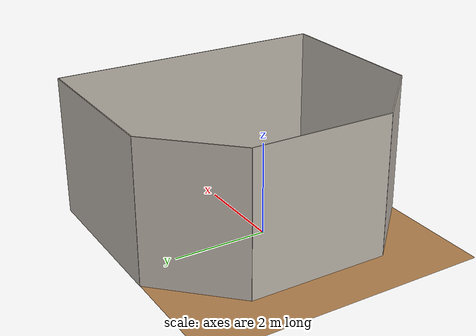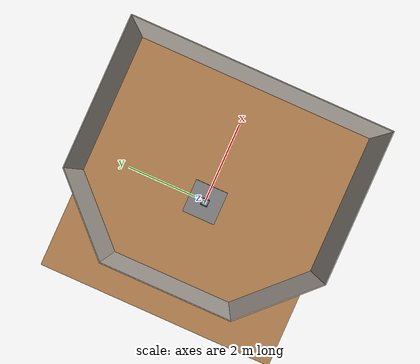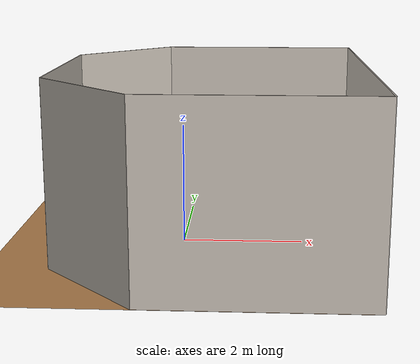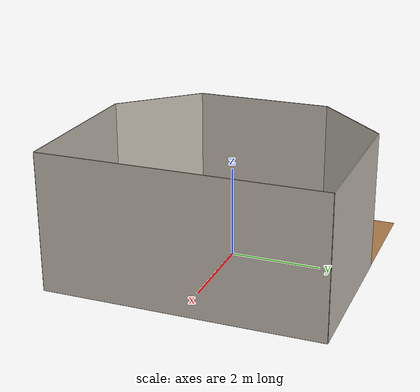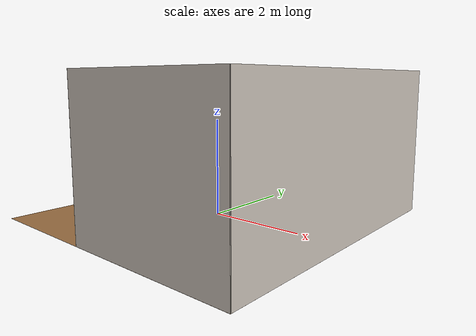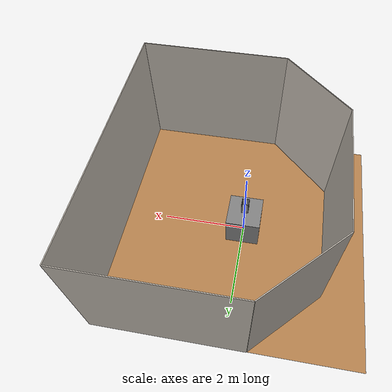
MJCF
<mujoco model="table_arena">
  <asset>
    <texture builtin="gradient" height="256" rgb1=".9 .9 1." rgb2=".2 .3 .4" type="skybox" width="256"/>
    <texture file="../textures/wood-tiles.png" type="2d" name="texplane"/>
    <material name="floorplane" reflectance="0.01" shininess="0.0" specular="0.0" texrepeat="2 2" texture="texplane" texuniform="true"/>
    <!-- ceramic table texture and material-->
    <texture file="../textures/ceramic.png" type="cube" name="tex-ceramic"/>
    <material name="table_ceramic" reflectance="0.0" shininess="0.0" specular="0.2" texrepeat="1 1" texture="tex-ceramic" />
    <!-- steel legs -->
    <texture file="../textures/steel-brushed.png" type="cube" name="tex-steel-brushed"/>
    <material name="table_legs_metal" reflectance="0.8" shininess="0.8" texrepeat="1 1" texture="tex-steel-brushed" />
    <!-- plaster walls -->
    <texture file="../textures/cream-plaster.png" type="2d" name="tex-cream-plaster"/>
    <material name="walls_mat" reflectance="0.0" shininess="0.1" specular="0.1" texrepeat="3 3" texture="tex-cream-plaster" texuniform="true" />
    <!-- added table texture and material for domain randomization -->
    <texture  name="textable" builtin="flat" height="512" width="512" rgb1="0.5 0.5 0.5" rgb2="0.5 0.5 0.5"/>
    <material name="table_mat" texture="textable" />

    <mesh file="meshes/trash_can.stl" name="trashcan_mesh" scale="0.01 0.01 0.02"/>
  </asset>
  <worldbody>
    <!-- Floor -->
    <geom condim="3" material="floorplane" name="floor" pos="0 0 0" size="3 3 .125" type="plane"/>
    <!-- Walls (visual only) -->
    <geom pos="-1.25 2.25 1.5" quat="0.6532815 0.6532815 0.2705981 0.2705981" size="1.06 1.5 0.01" type="box" conaffinity="0" contype="0" group="1" name="wall_leftcorner_visual" material="walls_mat"/>
    <geom pos="-1.25 -2.25 1.5" quat="0.6532815 0.6532815 -0.2705981 -0.2705981" size="1.06 1.5 0.01" type="box" conaffinity="0" contype="0" group="1" name="wall_rightcorner_visual" material="walls_mat"/>
    <geom pos="1.25 3 1.5" quat="0.7071 0.7071 0 0" size="1.75 1.5 0.01" type="box" conaffinity="0" contype="0" group="1" name="wall_left_visual" material="walls_mat"/>
    <geom pos="1.25 -3 1.5" quat="0.7071 -0.7071 0 0" size="1.75 1.5 0.01" type="box" conaffinity="0" contype="0" group="1" name="wall_right_visual" material="walls_mat"/>
    <geom pos="-2 0 1.5" quat="0.5 0.5 0.5 0.5" size="1.5 1.5 0.01" type="box" conaffinity="0" contype="0" group="1" name="wall_rear_visual" material="walls_mat"/>
    <geom pos="3 0 1.5" quat="0.5 0.5 -0.5 -0.5" size="3 1.5 0.01" type="box" conaffinity="0" contype="0" group="1" name="wall_front_visual" material="walls_mat"/>
    <!-- Table body -->
    <body name="table" pos="0 0 0.4">
      <geom pos="0 0 0" size="0.4 0.4 0.4" type="box" group="0" name="table_collision" friction="1 0.005 0.0001"/>
      <geom pos="0 0 0" size="0.4 0.4 0.4" type="box" conaffinity="0" contype="0" group="1" name="table_visual" material="table_ceramic"/>
      <site pos="0 0 0.4" name="table_top" size="0.001 0.001 0.001" rgba="0 0 0 0"/>
      <!-- Legs (visual only) -->
      <geom pos="0 0 0" size="0.05 0.1" type="cylinder" conaffinity="0" contype="0" group="1" name="table_leg1_visual" material="table_legs_metal"/>
      <geom pos="0 0 0" size="0.05 0.1" type="cylinder" conaffinity="0" contype="0" group="1" name="table_leg2_visual" material="table_legs_metal"/>
      <geom pos="0 0 0" size="0.05 0.1" type="cylinder" conaffinity="0" contype="0" group="1" name="table_leg3_visual" material="table_legs_metal"/>
      <geom pos="0 0 0" size="0.05 0.1" type="cylinder" conaffinity="0" contype="0" group="1" name="table_leg4_visual" material="table_legs_metal"/>
    </body>
    <body name="trashcan" pos="0 0 0.85" quat="1 0 0 0">
      <geom pos="0 0.08 0.175" size="0.08 0.005 0.17" type="box" group="0" conaffinity="1" name="trashcan1_collision" friction="1 0.005 0.0001"/>
      <geom pos="0 0.08 0.175" size="0.08 0.005 0.17" type="box" group="1" conaffinity="0" contype="0" name="trashcan1_visual" rgba="0.1 0.1 0.5 0.5"/>

      <geom pos="-0.08 0 0.175" size="0.005 0.08 0.17" type="box" group="0" conaffinity="1" name="trashcan2_collsion" friction="1 0.005 0.0001"/>
      <geom pos = "-0.08 0 0.175" size="0.005 0.08 0.17" type="box" group="1" conaffinity="0" contype="0" name="trashcan2_visual" rgba="0.1 0.1 0.5 0.5"/>

      <geom pos="0.08 0 0.175" size="0.005 0.08 0.17" type="box" group="0" conaffinity="1" name="trashcan3_collsion" friction="1 0.005 0.0001"/>
      <geom pos = "0.08 0 0.175" size="0.005 0.08 0.17" type="box" group="1" conaffinity="0" contype="0" name="trashcan3_visual" rgba="0.1 0.1 0.5 0.5"/>

      <geom pos="0 -0.08 0.175" size="0.08 0.005 0.17" type="box" group="0" conaffinity="1" name="trashcan4_collision" friction="1 0.005 0.0001"/>
      <geom pos="0 -0.08 0.175" size="0.08 0.005 0.17" type="box" group="1" conaffinity="0" contype="0" name="trashcan4_visual" rgba="0.1 0.1 0.5 0.5"/>

      <geom pos="0 0 0.0025" size="0.08 0.08 0.005" type="box" group="0" conaffinity="1" name="trashcan5_collision" friction="1 0.005 0.0001"/>
      <geom pos="0 0 0.0025" size="0.08 0.08 0.005" type="box" group="1" conaffinity="0" contype="0" name="trashcan5_visual" friction="1 0.005 0.0001" rgba="0.1 0.1 0.5 0.5"/>
    </body>

    <light name="light1" diffuse=".8 .8 .8" dir="0 -.15 -1" directional="false" pos="1 1 4.0" specular="0.3 0.3 0.3" castshadow="false"/>
    <light name="light2" diffuse=".8 .8 .8" dir="0 -.15 -1" directional="false" pos="-3. -3. 4.0" specular="0.3 0.3 0.3" castshadow="false"/>
    <!-- front view -->
    <camera mode="fixed" name="frontview" pos="1.6 0 1.45" quat="0.56 0.43 0.43 0.56"/>
    <!-- bird view -->
    <camera mode="fixed" name="birdview" pos="-0.2 0 3.0" quat="0.7071 0 0 0.7071"/>
    <!-- agent view -->
    <camera mode="fixed" name="agentview" pos="0.5 0 1.35" quat="0.653 0.271 0.271 0.653"/>
    <!-- side view -->
    <camera mode="fixed" name="sideview" pos="-0.05651774593317116 1.2761224129427358 1.4879572214102434" quat="0.009905065491771751 0.006877963156909582 0.5912228352893879 0.806418094001364" />
  </worldbody>
</mujoco>
